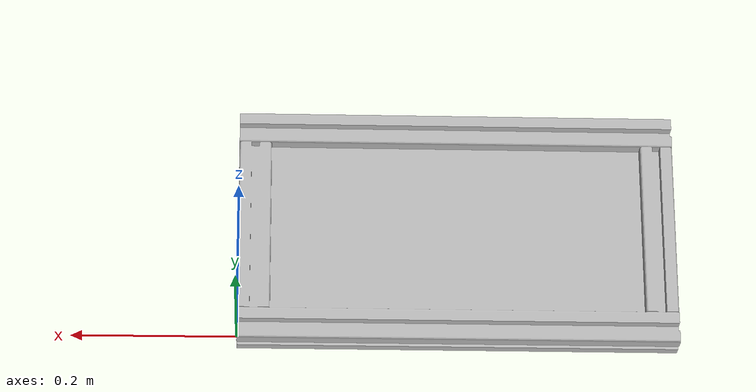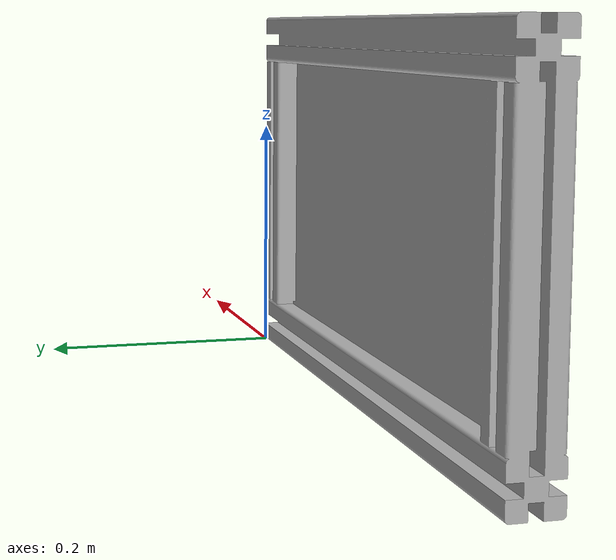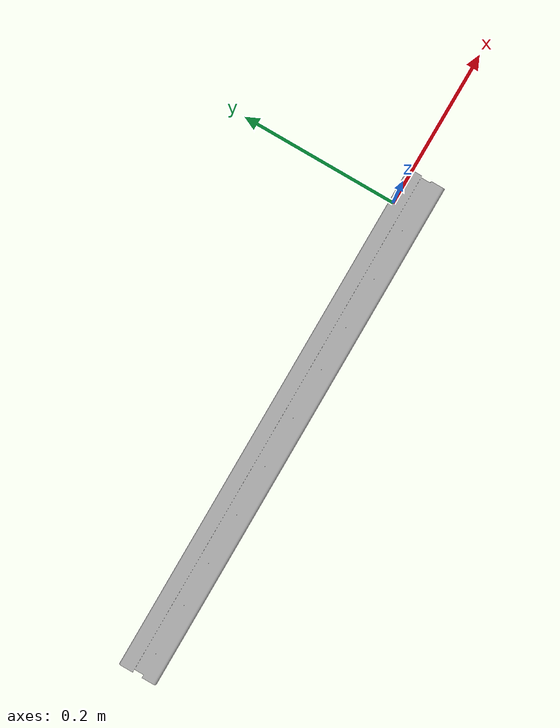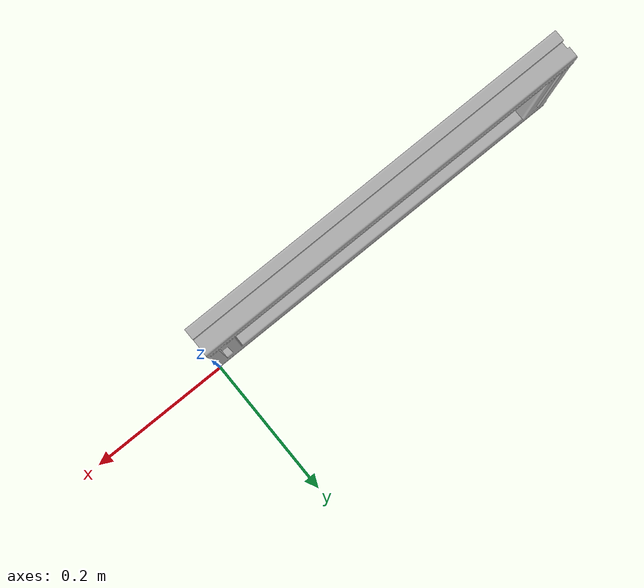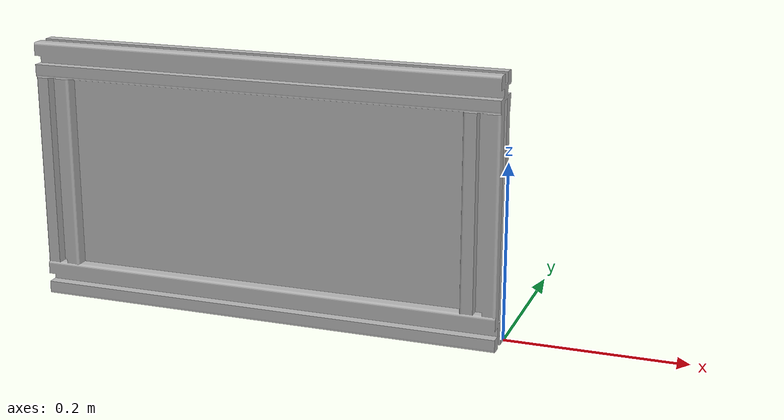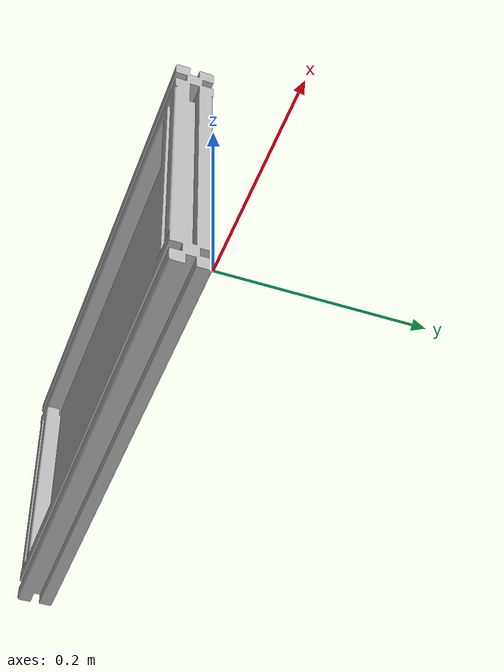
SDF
<?xml version="1.0" ?>
<sdf version="1.3">
  <model name="Wall_540x300x40_90degree">
    <static>true</static>
    <link name="link">
      <pose>0 0 0 0 0 0</pose>
      <collision name="collision">
        <geometry>
          <mesh>
            <uri>model://wall_540x300x40_90degree/meshes/wall_540x300x40_90degree.dae</uri>
          </mesh>
        </geometry>
      </collision>
      <visual name="visual">
        <geometry>
          <mesh>
            <uri>model://wall_540x300x40_90degree/meshes/wall_540x300x40_90degree.dae</uri>
          </mesh>
        </geometry>
      </visual>
    </link>
  </model>
</sdf>
